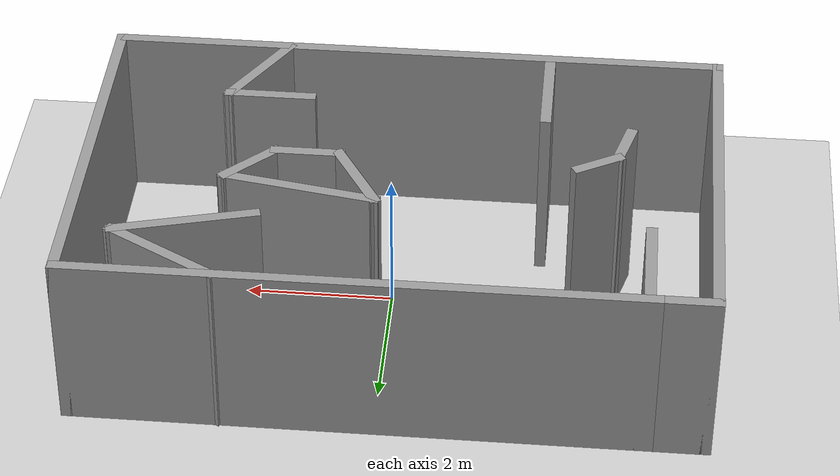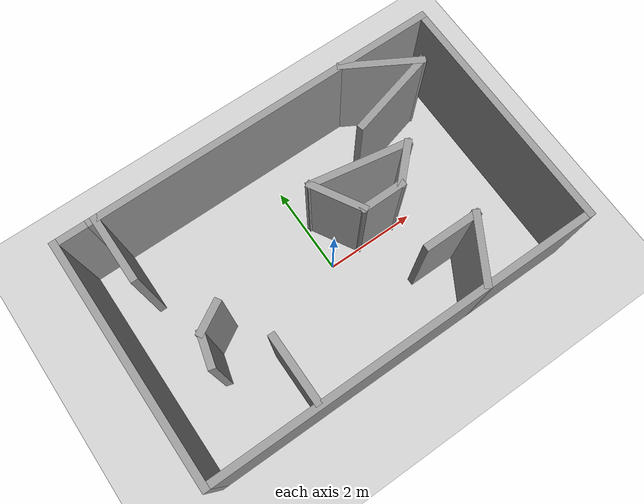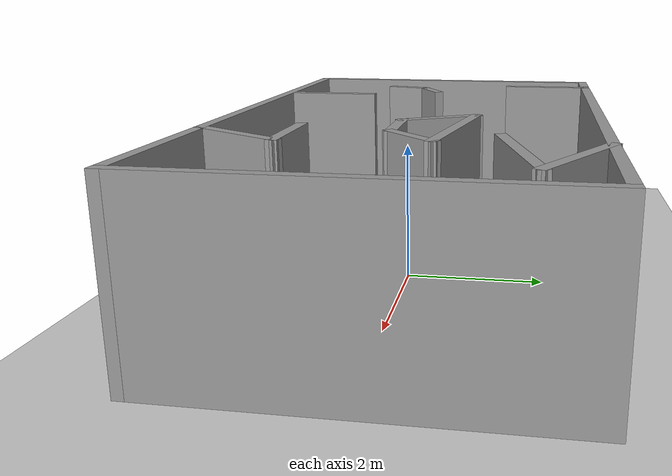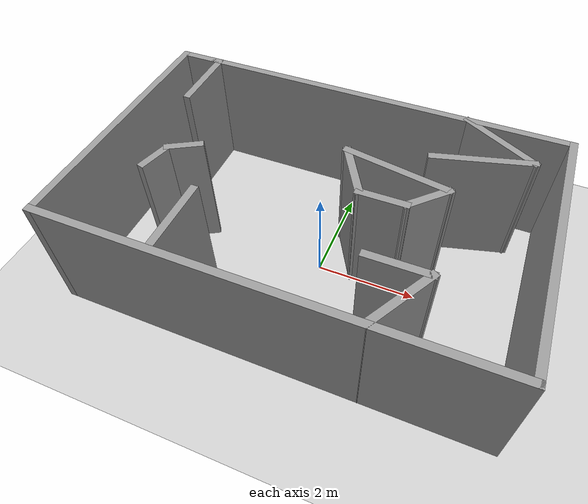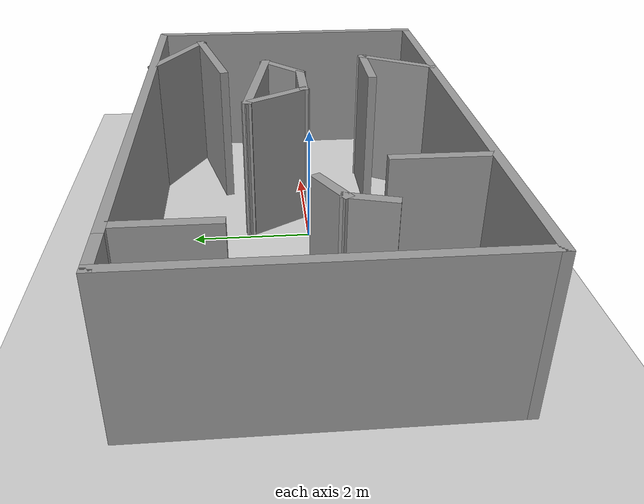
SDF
<sdf version="1.6">
 <world name="default">
  <light name="sun" type="directional">
   <pose>0 0 10 0 -0 0</pose>
   <diffuse>0.8 0.8 0.8 1</diffuse>
   <specular>0.2 0.2 0.2 1</specular>
   <attenuation>
    <range>1000</range>
    <constant>0.9</constant>
    <linear>0.01</linear>
    <quadratic>0.001</quadratic>
   </attenuation>
   <direction>-0.5 0.1 -0.9</direction>
  </light>
  <model name="ground_plane">
   <static>1</static>
   <link name="link">
    <collision name="collision">
     <geometry><plane><normal>0 0 1</normal><size>100 100</size></plane></geometry>
     <surface>
      <contact><collide_bitmask>65535</collide_bitmask></contact>
      <friction><ode><mu>100</mu><mu2>50</mu2></ode></friction>
     </surface>
    </collision>
    <visual name="visual">
     <cast_shadows>0</cast_shadows>
     <geometry><plane><normal>0 0 1</normal><size>100 100</size></plane></geometry>
     <material>
      <script><uri>file://media/materials/scripts/gazebo.material</uri><name>Gazebo/Grey</name></script>
     </material>
    </visual>
   </link>
  </model>
  <gravity>0 0 -9.8</gravity>
  <magnetic_field>6e-06 2.3e-05 -4.2e-05</magnetic_field>
  <atmosphere type="adiabatic"/>
  <physics name="default_physics" default="0" type="ode">
   <max_step_size>0.001</max_step_size>
   <real_time_factor>1</real_time_factor>
   <real_time_update_rate>1000</real_time_update_rate>
  </physics>
  <scene><ambient>0.4 0.4 0.4 1</ambient><background>0.7 0.7 0.7 1</background><shadows>1</shadows></scene>
  <audio><device>default</device></audio>
  <spherical_coordinates>
   <surface_model>EARTH_WGS84</surface_model>
   <latitude_deg>0</latitude_deg>
   <longitude_deg>0</longitude_deg>
   <elevation>0</elevation>
   <heading_deg>0</heading_deg>
  </spherical_coordinates>
  <model name="Untitled">
   <pose>-0.142357 0.158694 0 0 -0 0</pose>
   <link name="Wall_23">
    <collision name="Wall_23_Collision">
     <geometry><box><size>7.75 0.15 2.5</size></box></geometry>
     <pose>0 0 1.25 0 -0 0</pose>
    </collision>
    <visual name="Wall_23_Visual">
     <pose>0 0 1.25 0 -0 0</pose>
     <geometry><box><size>7.75 0.15 2.5</size></box></geometry>
     <material>
      <script><uri>file://media/materials/scripts/gazebo.material</uri><name>Gazebo/Grey</name></script>
      <ambient>1 1 1 1</ambient>
     </material>
     <meta><layer>0</layer></meta>
    </visual>
    <pose>0.375 2.53986 0 0 -0 0</pose>
   </link>
   <link name="Wall_24">
    <collision name="Wall_24_Collision">
     <geometry><box><size>5.25 0.15 2.5</size></box></geometry>
     <pose>0 0 1.25 0 -0 0</pose>
    </collision>
    <visual name="Wall_24_Visual">
     <pose>0 0 1.25 0 -0 0</pose>
     <geometry><box><size>5.25 0.15 2.5</size></box></geometry>
     <material>
      <script><uri>file://media/materials/scripts/gazebo.material</uri><name>Gazebo/Grey</name></script>
      <ambient>1 1 1 1</ambient>
     </material>
     <meta><layer>0</layer></meta>
    </visual>
    <pose>4.175 -0.010139 0 0 -0 -1.5708</pose>
   </link>
   <link name="Wall_25">
    <collision name="Wall_25_Collision">
     <geometry><box><size>8.5 0.15 2.5</size></box></geometry>
     <pose>0 0 1.25 0 -0 0</pose>
    </collision>
    <visual name="Wall_25_Visual">
     <pose>0 0 1.25 0 -0 0</pose>
     <geometry><box><size>8.5 0.15 2.5</size></box></geometry>
     <material>
      <script><uri>file://media/materials/scripts/gazebo.material</uri><name>Gazebo/Grey</name></script>
      <ambient>1 1 1 1</ambient>
     </material>
     <meta><layer>0</layer></meta>
    </visual>
    <pose>0 -2.56014 0 0 -0 3.14159</pose>
   </link>
   <link name="Wall_26">
    <collision name="Wall_26_Collision">
     <geometry><box><size>5.25 0.15 2.5</size></box></geometry>
     <pose>0 0 1.25 0 -0 0</pose>
    </collision>
    <visual name="Wall_26_Visual">
     <pose>0 0 1.25 0 -0 0</pose>
     <geometry><box><size>5.25 0.15 2.5</size></box></geometry>
     <material>
      <script><uri>file://media/materials/scripts/gazebo.material</uri><name>Gazebo/Grey</name></script>
      <ambient>1 1 1 1</ambient>
     </material>
     <meta><layer>0</layer></meta>
    </visual>
    <pose>-4.175 -0.010139 0 0 -0 1.5708</pose>
   </link>
   <link name="Wall_27">
    <collision name="Wall_27_Collision">
     <geometry><box><size>1 0.15 2.5</size></box></geometry>
     <pose>0 0 1.25 0 -0 0</pose>
    </collision>
    <visual name="Wall_27_Visual">
     <pose>0 0 1.25 0 -0 0</pose>
     <geometry><box><size>1 0.15 2.5</size></box></geometry>
     <material>
      <script><uri>file://media/materials/scripts/gazebo.material</uri><name>Gazebo/Grey</name></script>
      <ambient>1 1 1 1</ambient>
     </material>
     <meta><layer>0</layer></meta>
    </visual>
    <pose>-3.75 2.53986 0 0 -0 0</pose>
   </link>
   <link name="Wall_28">
    <collision name="Wall_28_Collision">
     <geometry><box><size>1.5 0.15 2.5</size></box></geometry>
     <pose>0 0 1.25 0 -0 0</pose>
    </collision>
    <visual name="Wall_28_Visual">
     <pose>0 0 1.25 0 -0 0</pose>
     <geometry><box><size>1.5 0.15 2.5</size></box></geometry>
     <material>
      <script><uri>file://media/materials/scripts/gazebo.material</uri><name>Gazebo/Grey</name></script>
      <ambient>1 1 1 1</ambient>
     </material>
     <meta><layer>0</layer></meta>
    </visual>
    <pose>-3.325 1.86486 0 0 -0 -1.5708</pose>
   </link>
   <link name="Wall_30">
    <collision name="Wall_30_Collision">
     <geometry><box><size>1.5 0.15 2.5</size></box></geometry>
     <pose>0 0 1.25 0 -0 0</pose>
    </collision>
    <visual name="Wall_30_Visual">
     <pose>0 0 1.25 0 -0 0</pose>
     <geometry><box><size>1.5 0.15 2.5</size></box></geometry>
     <material>
      <script><uri>file://media/materials/scripts/gazebo.material</uri><name>Gazebo/Grey</name></script>
      <ambient>1 1 1 1</ambient>
     </material>
     <meta><layer>0</layer></meta>
    </visual>
    <pose>-1.8585 -1.80403 0 0 -0 1.5708</pose>
   </link>
   <link name="Wall_32">
    <collision name="Wall_32_Collision">
     <geometry><box><size>1.25 0.15 2.5</size></box></geometry>
     <pose>0 0 1.25 0 -0 0</pose>
    </collision>
    <visual name="Wall_32_Visual">
     <pose>0 0 1.25 0 -0 0</pose>
     <geometry><box><size>1.25 0.15 2.5</size></box></geometry>
     <material>
      <script><uri>file://media/materials/scripts/gazebo.material</uri><name>Gazebo/Grey</name></script>
      <ambient>1 1 1 1</ambient>
     </material>
     <meta><layer>0</layer></meta>
    </visual>
    <pose>0.560935 0.360167 0 0 -0 -1.0472</pose>
   </link>
   <link name="Wall_33">
    <collision name="Wall_33_Collision">
     <geometry><box><size>1 0.15 2.5</size></box></geometry>
     <pose>0 0 1.25 0 -0 0</pose>
    </collision>
    <visual name="Wall_33_Visual">
     <pose>0 0 1.25 0 -0 0</pose>
     <geometry><box><size>1 0.15 2.5</size></box></geometry>
     <material>
      <script><uri>file://media/materials/scripts/gazebo.material</uri><name>Gazebo/Grey</name></script>
      <ambient>1 1 1 1</ambient>
     </material>
     <meta><layer>0</layer></meta>
    </visual>
    <pose>1.26093 -0.116147 0 0 -0 0</pose>
   </link>
   <link name="Wall_34">
    <collision name="Wall_34_Collision">
     <geometry><box><size>1 0.15 2.5</size></box></geometry>
     <pose>0 0 1.25 0 -0 0</pose>
    </collision>
    <visual name="Wall_34_Visual">
     <pose>0 0 1.25 0 -0 0</pose>
     <geometry><box><size>1 0.15 2.5</size></box></geometry>
     <material>
      <script><uri>file://media/materials/scripts/gazebo.material</uri><name>Gazebo/Grey</name></script>
      <ambient>1 1 1 1</ambient>
     </material>
     <meta><layer>0</layer></meta>
    </visual>
    <pose>1.98646 0.184374 0 0 -0 0.785398</pose>
   </link>
   <link name="Wall_35">
    <collision name="Wall_35_Collision">
     <geometry><box><size>2.18169 0.15 2.5</size></box></geometry>
     <pose>0 0 1.25 0 -0 0</pose>
    </collision>
    <visual name="Wall_35_Visual">
     <pose>0 0 1.25 0 -0 0</pose>
     <geometry><box><size>2.18169 0.15 2.5</size></box></geometry>
     <material>
      <script><uri>file://media/materials/scripts/gazebo.material</uri><name>Gazebo/Grey</name></script>
      <ambient>1 1 1 1</ambient>
     </material>
     <meta><layer>0</layer></meta>
    </visual>
    <pose>1.28645 0.660688 0 0 -0 2.96767</pose>
   </link>
   <link name="Wall_37">
    <collision name="Wall_37_Collision">
     <geometry><box><size>1.75 0.15 2.5</size></box></geometry>
     <pose>0 0 1.25 0 -0 0</pose>
    </collision>
    <visual name="Wall_37_Visual">
     <pose>0 0 1.25 0 -0 0</pose>
     <geometry><box><size>1.75 0.15 2.5</size></box></geometry>
     <material>
      <script><uri>file://media/materials/scripts/gazebo.material</uri><name>Gazebo/Grey</name></script>
      <ambient>1 1 1 1</ambient>
     </material>
     <meta><layer>0</layer></meta>
    </visual>
    <pose>2.87985 2.13986 0 0 -0 -0.523599</pose>
   </link>
   <link name="Wall_38">
    <collision name="Wall_38_Collision">
     <geometry><box><size>2 0.15 2.5</size></box></geometry>
     <pose>0 0 1.25 0 -0 0</pose>
    </collision>
    <visual name="Wall_38_Visual">
     <pose>0 0 1.25 0 -0 0</pose>
     <geometry><box><size>2 0.15 2.5</size></box></geometry>
     <material>
      <script><uri>file://media/materials/scripts/gazebo.material</uri><name>Gazebo/Grey</name></script>
      <ambient>1 1 1 1</ambient>
     </material>
     <meta><layer>0</layer></meta>
    </visual>
    <pose>2.67919 1.50045 0 0 -0 -2.87979</pose>
   </link>
   <link name="Wall_40">
    <collision name="Wall_40_Collision">
     <geometry><box><size>1.5 0.15 2.5</size></box></geometry>
     <pose>0 0 1.25 0 -0 0</pose>
    </collision>
    <visual name="Wall_40_Visual">
     <pose>0 0 1.25 0 -0 0</pose>
     <geometry><box><size>1.5 0.15 2.5</size></box></geometry>
     <material>
      <script><uri>file://media/materials/scripts/gazebo.material</uri><name>Gazebo/Grey</name></script>
      <ambient>1 1 1 1</ambient>
     </material>
     <meta><layer>0</layer></meta>
    </visual>
    <pose>2.1291 -1.95529 0 0 -0 1.0472</pose>
   </link>
   <link name="Wall_41">
    <collision name="Wall_41_Collision">
     <geometry><box><size>1.25 0.15 2.5</size></box></geometry>
     <pose>0 0 1.25 0 -0 0</pose>
    </collision>
    <visual name="Wall_41_Visual">
     <pose>0 0 1.25 0 -0 0</pose>
     <geometry><box><size>1.25 0.15 2.5</size></box></geometry>
     <material>
      <script><uri>file://media/materials/scripts/gazebo.material</uri><name>Gazebo/Grey</name></script>
      <ambient>1 1 1 1</ambient>
     </material>
     <meta><layer>0</layer></meta>
    </visual>
    <pose>1.9166 -1.37073 0 0 -0 3.14159</pose>
   </link>
   <link name="Wall_43">
    <collision name="Wall_43_Collision">
     <geometry><box><size>0.75 0.15 2.5</size></box></geometry>
     <pose>0 0 1.25 0 -0 0</pose>
    </collision>
    <visual name="Wall_43_Visual">
     <pose>0 0 1.25 0 -0 0</pose>
     <geometry><box><size>0.75 0.15 2.5</size></box></geometry>
     <material>
      <script><uri>file://media/materials/scripts/gazebo.material</uri><name>Gazebo/Grey</name></script>
      <ambient>1 1 1 1</ambient>
     </material>
     <meta><layer>0</layer></meta>
    </visual>
    <pose>-2.93672 -0.637956 0 0 -0 1.309</pose>
   </link>
   <link name="Wall_44">
    <collision name="Wall_44_Collision">
     <geometry><box><size>0.75 0.15 2.5</size></box></geometry>
     <pose>0 0 1.25 0 -0 0</pose>
    </collision>
    <visual name="Wall_44_Visual">
     <pose>0 0 1.25 0 -0 0</pose>
     <geometry><box><size>0.75 0.15 2.5</size></box></geometry>
     <material>
      <script><uri>file://media/materials/scripts/gazebo.material</uri><name>Gazebo/Grey</name></script>
      <ambient>1 1 1 1</ambient>
     </material>
     <meta><layer>0</layer></meta>
    </visual>
    <pose>-2.59926 -0.198178 0 0 -0 0.523599</pose>
   </link>
   <static>1</static>
  </model>
 </world>
</sdf>
